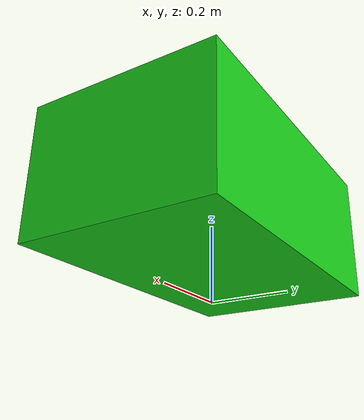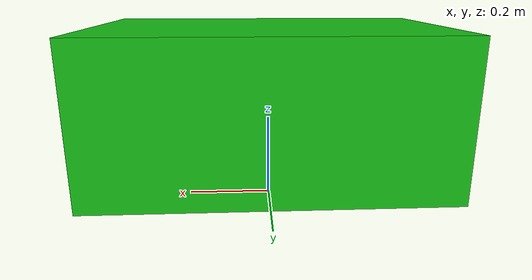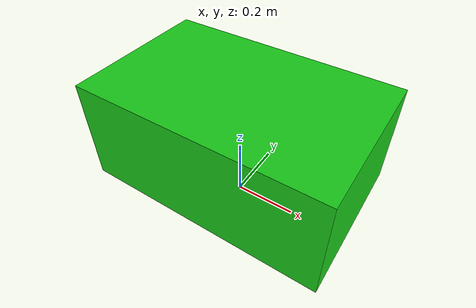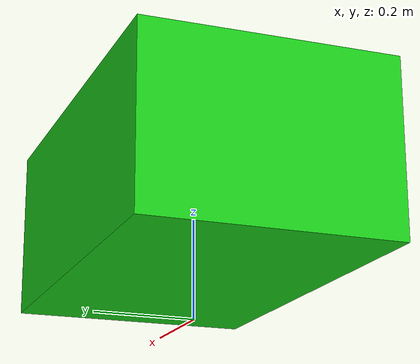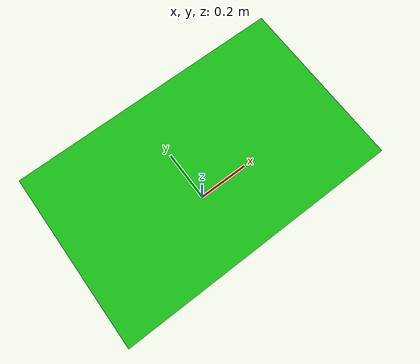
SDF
<?xml version="1.0"?>
<sdf version="1.6"><model name="ugv"><link name="base_link"><pose>0 0 0.25 0 0 0</pose><inertial><mass>5.0</mass></inertial><visual name="body"><geometry><box><size>0.8 0.5 0.35</size></box></geometry><material><ambient>0.1 0.8 0.1 1</ambient></material></visual><collision name="collision"><geometry><box><size>0.8 0.5 0.35</size></box></geometry></collision></link></model></sdf>
